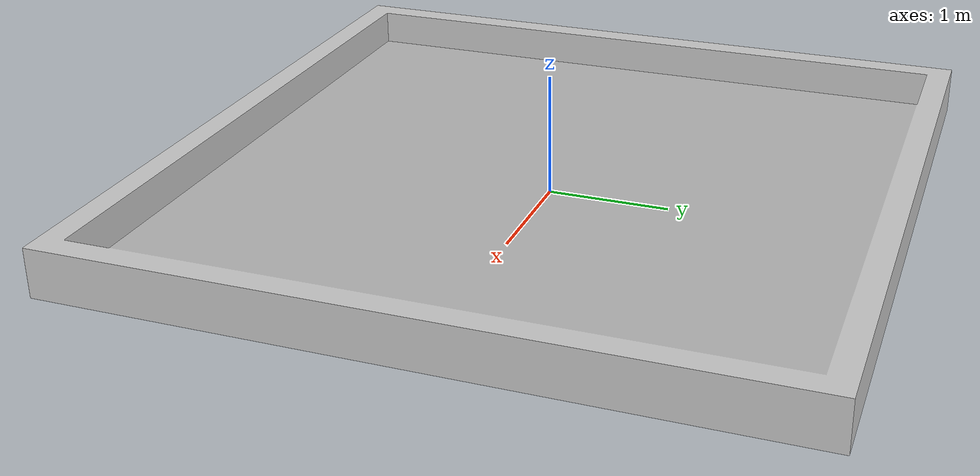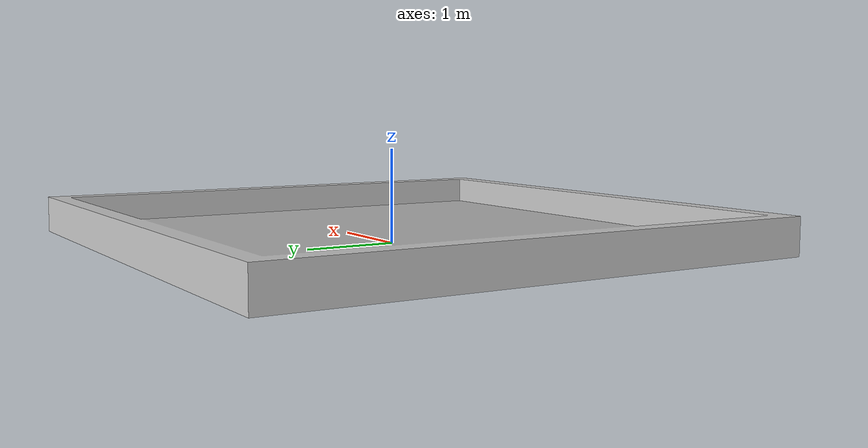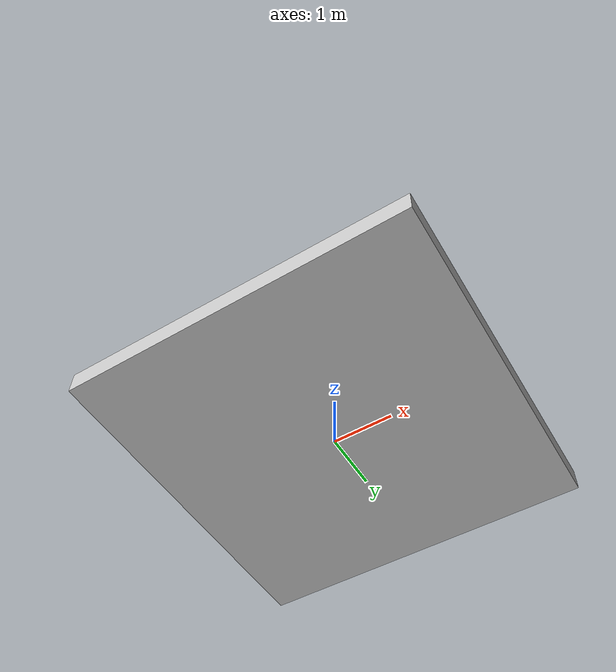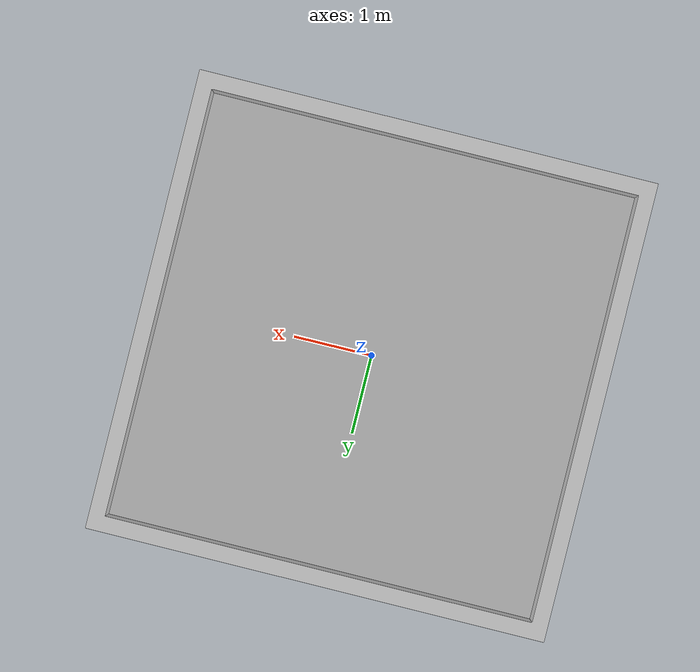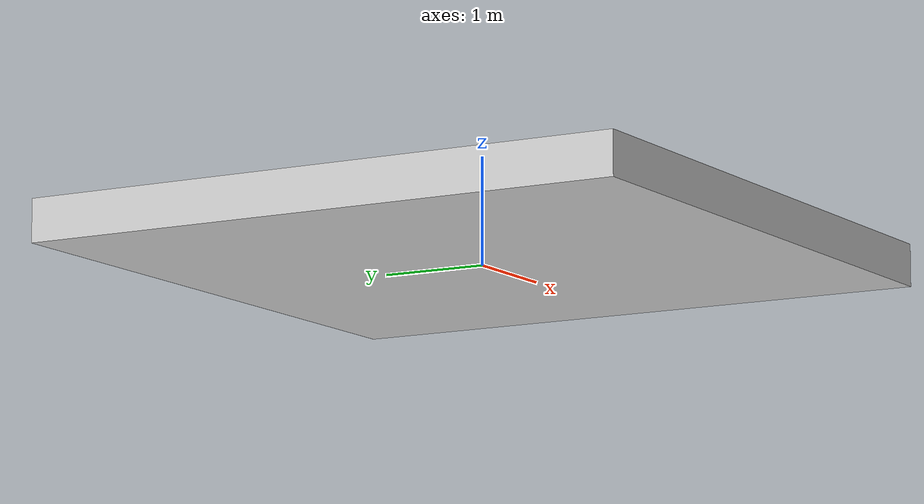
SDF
<?xml version="1.0" ?>
<sdf version="1.6">
  <model name="imitation_learning_stage">
    <static>true</static>
    <link name="link">
      <collision name="collision">
        <geometry>
          <mesh>
            <scale>1 1 1</scale>
            <uri>model://imitation_learning_stage/meshes/imitation_learning_stage.stl</uri>
          </mesh>
          <surface>
            <friction>
              <ode>
                <mu>1.2</mu>
                <mu2>1.2</mu2>
              </ode>
            </friction>
          </surface>
        </geometry>
      </collision>
      <visual name="visual">
        <geometry>
          <mesh>
            <scale>1 1 1</scale>
            <uri>model://imitation_learning_stage/meshes/imitation_learning_stage.dae</uri>
          </mesh>
        </geometry>
      </visual>
    </link>
  </model>
</sdf>
